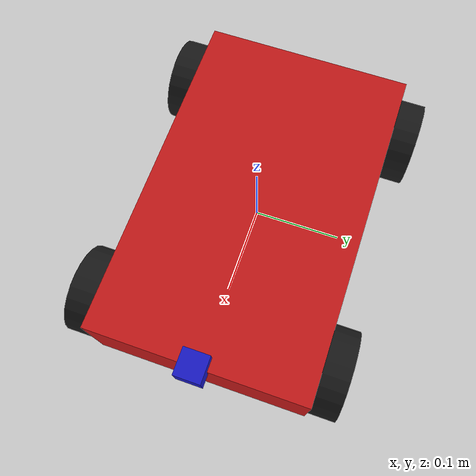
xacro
<?xml version="1.0"?>
<robot name="rusteze_car" xmlns:xacro="http://www.ros.org/wiki/xacro">

  <!-- ============ Properties ============ -->
  <xacro:property name="base_length" value="0.40"/>
  <xacro:property name="base_width"  value="0.25"/>
  <xacro:property name="base_height" value="0.10"/>
  <xacro:property name="base_mass"   value="2.0"/>

  <xacro:property name="wheel_radius" value="0.05"/>
  <xacro:property name="wheel_width"  value="0.03"/>
  <xacro:property name="wheel_mass"   value="0.2"/>

  <!-- ============ base_link ============ -->
  <link name="base_link">
    <visual>
      <origin xyz="0 0 0" rpy="0 0 0"/>
      <geometry>
        <box size="${base_length} ${base_width} ${base_height}"/>
      </geometry>
      <material name="red">
        <color rgba="0.8 0.1 0.1 1"/>
      </material>
    </visual>
    <collision>
      <origin xyz="0 0 0" rpy="0 0 0"/>
      <geometry>
        <box size="${base_length} ${base_width} ${base_height}"/>
      </geometry>
    </collision>
    <inertial>
      <mass value="${base_mass}"/>
      <origin xyz="0 0 0" rpy="0 0 0"/>
      <inertia
        ixx="${(1/12) * base_mass * (base_width*base_width + base_height*base_height)}" ixy="0.0" ixz="0.0"
        iyy="${(1/12) * base_mass * (base_length*base_length + base_height*base_height)}" iyz="0.0"
        izz="${(1/12) * base_mass * (base_length*base_length + base_width*base_width)}"/>
    </inertial>
  </link>
    <!-- ============ Wheel Macro ============ -->
  <xacro:macro name="wheel" params="prefix x_offset y_offset">
    <link name="${prefix}_wheel">
      <visual>
        <origin xyz="0 0 0" rpy="1.5708 0 0"/>
        <geometry>
          <cylinder radius="${wheel_radius}" length="${wheel_width}"/>
        </geometry>
        <material name="black">
          <color rgba="0.1 0.1 0.1 1"/>
        </material>
      </visual>
      <collision>
        <origin xyz="0 0 0" rpy="1.5708 0 0"/>
        <geometry>
          <cylinder radius="${wheel_radius}" length="${wheel_width}"/>
        </geometry>
      </collision>
      <inertial>
        <mass value="${wheel_mass}"/>
        <origin xyz="0 0 0" rpy="0 0 0"/>
        <inertia
          ixx="${(1/12) * wheel_mass * (3*wheel_radius*wheel_radius + wheel_width*wheel_width)}" ixy="0.0" ixz="0.0"
          iyy="${(1/12) * wheel_mass * (3*wheel_radius*wheel_radius + wheel_width*wheel_width)}" iyz="0.0"
          izz="${0.5 * wheel_mass * wheel_radius * wheel_radius}"/>
      </inertial>
    </link>

    <joint name="${prefix}_wheel_joint" type="continuous">
      <parent link="base_link"/>
      <child link="${prefix}_wheel"/>
      <origin xyz="${x_offset} ${y_offset} 0" rpy="0 0 0"/>
      <axis xyz="0 1 0"/>
    </joint>
  </xacro:macro>

  <!-- ============ Call the macro 4 times ============ -->
  <xacro:wheel prefix="front_left"  x_offset="0.15"  y_offset="0.14"/>
  <xacro:wheel prefix="front_right" x_offset="0.15"  y_offset="-0.14"/>
  <xacro:wheel prefix="rear_left"   x_offset="-0.15" y_offset="0.14"/>
  <xacro:wheel prefix="rear_right"  x_offset="-0.15" y_offset="-0.14"/>
    <!-- ============ Camera ============ -->
  <xacro:property name="camera_size" value="0.03"/>

  <link name="camera_link">
    <visual>
      <origin xyz="0 0 0" rpy="0 0 0"/>
      <geometry>
        <box size="${camera_size} ${camera_size} ${camera_size}"/>
      </geometry>
      <material name="blue">
        <color rgba="0.1 0.1 0.8 1"/>
      </material>
    </visual>
    <collision>
      <origin xyz="0 0 0" rpy="0 0 0"/>
      <geometry>
        <box size="${camera_size} ${camera_size} ${camera_size}"/>
      </geometry>
    </collision>
    <inertial>
      <mass value="0.05"/>
      <origin xyz="0 0 0" rpy="0 0 0"/>
      <inertia ixx="0.00001" ixy="0.0" ixz="0.0" iyy="0.00001" iyz="0.0" izz="0.00001"/>
    </inertial>
  </link>

  <joint name="camera_joint" type="fixed">
    <parent link="base_link"/>
    <child link="camera_link"/>
    <origin xyz="${base_length/2} 0 ${base_height/2}" rpy="0 0 0"/>
  </joint>

    <!-- ============ Gazebo (Harmonic) Diff Drive Plugin ============ -->
  <gazebo>
    <plugin filename="gz-sim-diff-drive-system" name="gz::sim::systems::DiffDrive">
      <left_joint>front_left_wheel_joint</left_joint>
      <right_joint>front_right_wheel_joint</right_joint>

      <wheel_separation>0.28</wheel_separation>
      <wheel_radius>${wheel_radius}</wheel_radius>

      <max_linear_acceleration>1.0</max_linear_acceleration>

      <topic>cmd_vel</topic>
      <odom_topic>odom</odom_topic>
      <frame_id>odom</frame_id>
      <child_frame_id>base_link</child_frame_id>

      <tf_topic>/tf</tf_topic>
    </plugin>

    <!-- Publishes joint states so RViz/robot_state_publisher see the wheels move -->
    <plugin filename="gz-sim-joint-state-publisher-system" name="gz::sim::systems::JointStatePublisher">
    </plugin>
  </gazebo>

</robot>
